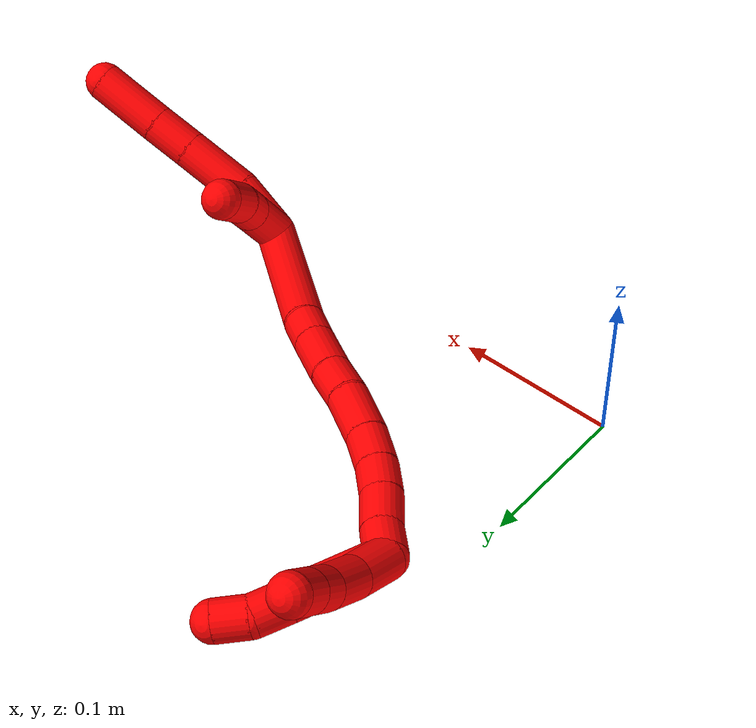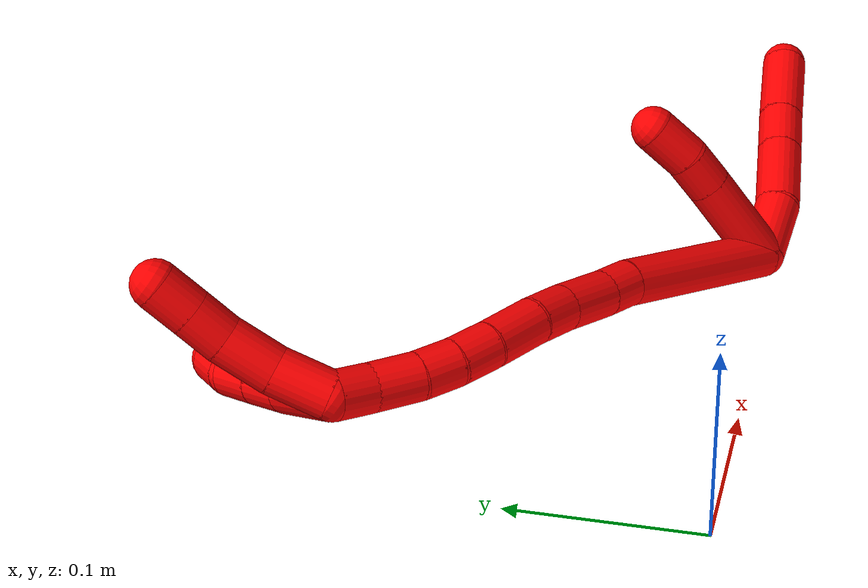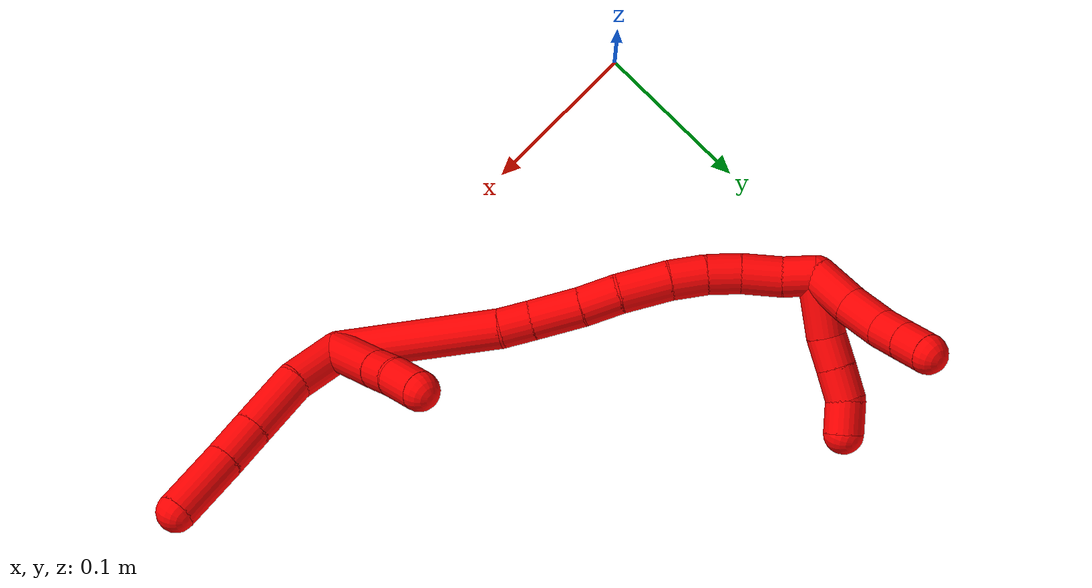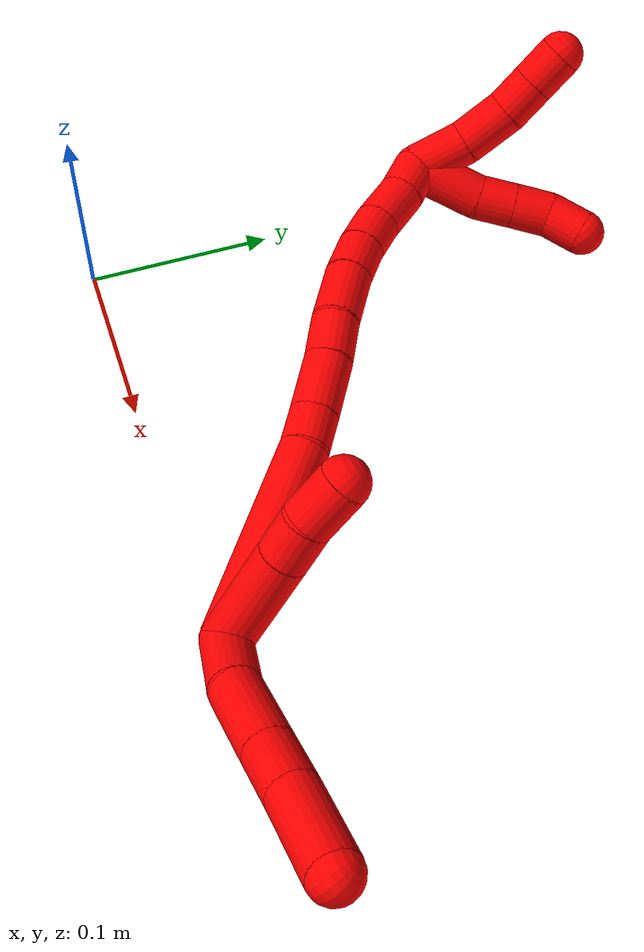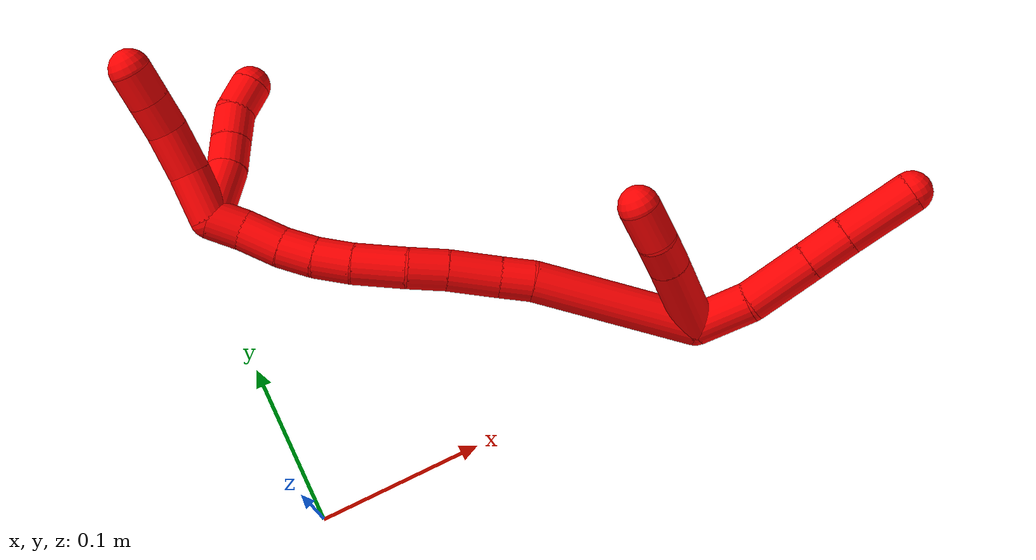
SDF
<sdf version="1.7">
 <world name="default">
  <model name="2">
   <static>0</static>
   <link name="2">
    <collision name="collision-cylinder-e_1_2_8">
     <pose>0.008455 -0.015945 0.001126 1.50032 0.486557 0.454587</pose>
     <geometry><cylinder><radius>0.0125</radius><length>0.036166</length></cylinder></geometry>
     <surface>
      <friction><ode><mu>1.16</mu><mu2>1.16</mu2><slip1>0</slip1><slip2>0</slip2></ode></friction>
      <contact><ode><kp>1e+06</kp><kd>1</kd><max_vel>0</max_vel><min_depth>0.001</min_depth></ode></contact>
     </surface>
    </collision>
    <visual name="visual-cylinder-e_1_2_8">
     <pose>0.008455 -0.015945 0.001126 1.50032 0.486557 0.454587</pose>
     <geometry><cylinder><radius>0.0125</radius><length>0.036166</length></cylinder></geometry>
     <material><ambient>1 0 0 1</ambient></material>
    </visual>
    <collision name="collision-cylinder-e_2_8_9">
     <pose>0.029414 -0.048225 0.00661 1.31004 0.63676 0.495936</pose>
     <geometry><cylinder><radius>0.0125</radius><length>0.042056</length></cylinder></geometry>
     <surface>
      <friction><ode><mu>1.16</mu><mu2>1.16</mu2><slip1>0</slip1><slip2>0</slip2></ode></friction>
      <contact><ode><kp>1e+06</kp><kd>1</kd><max_vel>0</max_vel><min_depth>0.001</min_depth></ode></contact>
     </surface>
    </collision>
    <visual name="visual-cylinder-e_2_8_9">
     <pose>0.029414 -0.048225 0.00661 1.31004 0.63676 0.495936</pose>
     <geometry><cylinder><radius>0.0125</radius><length>0.042056</length></cylinder></geometry>
     <material><ambient>1 0 0 1</ambient></material>
    </visual>
    <collision name="collision-cylinder-e_3_9_10">
     <pose>0.049985 -0.075011 0.01381 1.30538 0.640287 0.496457</pose>
     <geometry><cylinder><radius>0.0125</radius><length>0.027011</length></cylinder></geometry>
     <surface>
      <friction><ode><mu>1.16</mu><mu2>1.16</mu2><slip1>0</slip1><slip2>0</slip2></ode></friction>
      <contact><ode><kp>1e+06</kp><kd>1</kd><max_vel>0</max_vel><min_depth>0.001</min_depth></ode></contact>
     </surface>
    </collision>
    <visual name="visual-cylinder-e_3_9_10">
     <pose>0.049985 -0.075011 0.01381 1.30538 0.640287 0.496457</pose>
     <geometry><cylinder><radius>0.0125</radius><length>0.027011</length></cylinder></geometry>
     <material><ambient>1 0 0 1</ambient></material>
    </visual>
    <collision name="collision-cylinder-e_4_10_6">
     <pose>0.071349 -0.10296 0.020904 1.33237 0.635975 0.50637</pose>
     <geometry><cylinder><radius>0.0125</radius><length>0.044768</length></cylinder></geometry>
     <surface>
      <friction><ode><mu>1.16</mu><mu2>1.16</mu2><slip1>0</slip1><slip2>0</slip2></ode></friction>
      <contact><ode><kp>1e+06</kp><kd>1</kd><max_vel>0</max_vel><min_depth>0.001</min_depth></ode></contact>
     </surface>
    </collision>
    <visual name="visual-cylinder-e_4_10_6">
     <pose>0.071349 -0.10296 0.020904 1.33237 0.635975 0.50637</pose>
     <geometry><cylinder><radius>0.0125</radius><length>0.044768</length></cylinder></geometry>
     <material><ambient>1 0 0 1</ambient></material>
    </visual>
    <collision name="collision-cylinder-e_1_2_11">
     <pose>-0.006815 -0.006076 0.025493 0.233955 -0.254394 -0.030055</pose>
     <geometry><cylinder><radius>0.0125</radius><length>0.054158</length></cylinder></geometry>
     <surface>
      <friction><ode><mu>1.16</mu><mu2>1.16</mu2><slip1>0</slip1><slip2>0</slip2></ode></friction>
      <contact><ode><kp>1e+06</kp><kd>1</kd><max_vel>0</max_vel><min_depth>0.001</min_depth></ode></contact>
     </surface>
    </collision>
    <visual name="visual-cylinder-e_1_2_11">
     <pose>-0.006815 -0.006076 0.025493 0.233955 -0.254394 -0.030055</pose>
     <geometry><cylinder><radius>0.0125</radius><length>0.054158</length></cylinder></geometry>
     <material><ambient>1 0 0 1</ambient></material>
    </visual>
    <collision name="collision-cylinder-e_2_11_12">
     <pose>-0.016355 -0.014212 0.060857 0.20589 -0.263976 -0.027429</pose>
     <geometry><cylinder><radius>0.0125</radius><length>0.020889</length></cylinder></geometry>
     <surface>
      <friction><ode><mu>1.16</mu><mu2>1.16</mu2><slip1>0</slip1><slip2>0</slip2></ode></friction>
      <contact><ode><kp>1e+06</kp><kd>1</kd><max_vel>0</max_vel><min_depth>0.001</min_depth></ode></contact>
     </surface>
    </collision>
    <visual name="visual-cylinder-e_2_11_12">
     <pose>-0.016355 -0.014212 0.060857 0.20589 -0.263976 -0.027429</pose>
     <geometry><cylinder><radius>0.0125</radius><length>0.020889</length></cylinder></geometry>
     <material><ambient>1 0 0 1</ambient></material>
    </visual>
    <collision name="collision-cylinder-e_3_12_5">
     <pose>-0.020754 -0.017157 0.083059 0.071527 -0.134567 -0.004822</pose>
     <geometry><cylinder><radius>0.0125</radius><length>0.024953</length></cylinder></geometry>
     <surface>
      <friction><ode><mu>1.16</mu><mu2>1.16</mu2><slip1>0</slip1><slip2>0</slip2></ode></friction>
      <contact><ode><kp>1e+06</kp><kd>1</kd><max_vel>0</max_vel><min_depth>0.001</min_depth></ode></contact>
     </surface>
    </collision>
    <visual name="visual-cylinder-e_3_12_5">
     <pose>-0.020754 -0.017157 0.083059 0.071527 -0.134567 -0.004822</pose>
     <geometry><cylinder><radius>0.0125</radius><length>0.024953</length></cylinder></geometry>
     <material><ambient>1 0 0 1</ambient></material>
    </visual>
    <collision name="collision-cylinder-e_1_2_13">
     <pose>-0.02173 0.03153 0.033839 -0.750096 -0.439221 0.175298</pose>
     <geometry><cylinder><radius>0.0125</radius><length>0.102205</length></cylinder></geometry>
     <surface>
      <friction><ode><mu>1.16</mu><mu2>1.16</mu2><slip1>0</slip1><slip2>0</slip2></ode></friction>
      <contact><ode><kp>1e+06</kp><kd>1</kd><max_vel>0</max_vel><min_depth>0.001</min_depth></ode></contact>
     </surface>
    </collision>
    <visual name="visual-cylinder-e_1_2_13">
     <pose>-0.02173 0.03153 0.033839 -0.750096 -0.439221 0.175298</pose>
     <geometry><cylinder><radius>0.0125</radius><length>0.102205</length></cylinder></geometry>
     <material><ambient>1 0 0 1</ambient></material>
    </visual>
    <collision name="collision-cylinder-e_2_13_14">
     <pose>-0.048331 0.069978 0.073069 -0.908773 -0.506917 0.251722</pose>
     <geometry><cylinder><radius>0.0125</radius><length>0.020063</length></cylinder></geometry>
     <surface>
      <friction><ode><mu>1.16</mu><mu2>1.16</mu2><slip1>0</slip1><slip2>0</slip2></ode></friction>
      <contact><ode><kp>1e+06</kp><kd>1</kd><max_vel>0</max_vel><min_depth>0.001</min_depth></ode></contact>
     </surface>
    </collision>
    <visual name="visual-cylinder-e_2_13_14">
     <pose>-0.048331 0.069978 0.073069 -0.908773 -0.506917 0.251722</pose>
     <geometry><cylinder><radius>0.0125</radius><length>0.020063</length></cylinder></geometry>
     <material><ambient>1 0 0 1</ambient></material>
    </visual>
    <collision name="collision-cylinder-e_3_14_15">
     <pose>-0.061351 0.087058 0.087475 -0.845159 -0.540359 0.247798</pose>
     <geometry><cylinder><radius>0.0125</radius><length>0.031685</length></cylinder></geometry>
     <surface>
      <friction><ode><mu>1.16</mu><mu2>1.16</mu2><slip1>0</slip1><slip2>0</slip2></ode></friction>
      <contact><ode><kp>1e+06</kp><kd>1</kd><max_vel>0</max_vel><min_depth>0.001</min_depth></ode></contact>
     </surface>
    </collision>
    <visual name="visual-cylinder-e_3_14_15">
     <pose>-0.061351 0.087058 0.087475 -0.845159 -0.540359 0.247798</pose>
     <geometry><cylinder><radius>0.0125</radius><length>0.031685</length></cylinder></geometry>
     <material><ambient>1 0 0 1</ambient></material>
    </visual>
    <collision name="collision-cylinder-e_4_15_16">
     <pose>-0.076302 0.105076 0.102651 -0.905705 -0.597988 0.297741</pose>
     <geometry><cylinder><radius>0.0125</radius><length>0.02416</length></cylinder></geometry>
     <surface>
      <friction><ode><mu>1.16</mu><mu2>1.16</mu2><slip1>0</slip1><slip2>0</slip2></ode></friction>
      <contact><ode><kp>1e+06</kp><kd>1</kd><max_vel>0</max_vel><min_depth>0.001</min_depth></ode></contact>
     </surface>
    </collision>
    <visual name="visual-cylinder-e_4_15_16">
     <pose>-0.076302 0.105076 0.102651 -0.905705 -0.597988 0.297741</pose>
     <geometry><cylinder><radius>0.0125</radius><length>0.02416</length></cylinder></geometry>
     <material><ambient>1 0 0 1</ambient></material>
    </visual>
    <collision name="collision-cylinder-e_5_16_17">
     <pose>-0.090442 0.124784 0.116521 -0.994171 -0.478815 0.263316</pose>
     <geometry><cylinder><radius>0.0125</radius><length>0.03186</length></cylinder></geometry>
     <surface>
      <friction><ode><mu>1.16</mu><mu2>1.16</mu2><slip1>0</slip1><slip2>0</slip2></ode></friction>
      <contact><ode><kp>1e+06</kp><kd>1</kd><max_vel>0</max_vel><min_depth>0.001</min_depth></ode></contact>
     </surface>
    </collision>
    <visual name="visual-cylinder-e_5_16_17">
     <pose>-0.090442 0.124784 0.116521 -0.994171 -0.478815 0.263316</pose>
     <geometry><cylinder><radius>0.0125</radius><length>0.03186</length></cylinder></geometry>
     <material><ambient>1 0 0 1</ambient></material>
    </visual>
    <collision name="collision-cylinder-e_6_17_18">
     <pose>-0.10191 0.145349 0.13015 -0.973882 -0.373591 0.199473</pose>
     <geometry><cylinder><radius>0.0125</radius><length>0.022629</length></cylinder></geometry>
     <surface>
      <friction><ode><mu>1.16</mu><mu2>1.16</mu2><slip1>0</slip1><slip2>0</slip2></ode></friction>
      <contact><ode><kp>1e+06</kp><kd>1</kd><max_vel>0</max_vel><min_depth>0.001</min_depth></ode></contact>
     </surface>
    </collision>
    <visual name="visual-cylinder-e_6_17_18">
     <pose>-0.10191 0.145349 0.13015 -0.973882 -0.373591 0.199473</pose>
     <geometry><cylinder><radius>0.0125</radius><length>0.022629</length></cylinder></geometry>
     <material><ambient>1 0 0 1</ambient></material>
    </visual>
    <collision name="collision-cylinder-e_7_18_19">
     <pose>-0.10885 0.161932 0.142411 -0.892696 -0.271233 0.130418</pose>
     <geometry><cylinder><radius>0.0125</radius><length>0.020982</length></cylinder></geometry>
     <surface>
      <friction><ode><mu>1.16</mu><mu2>1.16</mu2><slip1>0</slip1><slip2>0</slip2></ode></friction>
      <contact><ode><kp>1e+06</kp><kd>1</kd><max_vel>0</max_vel><min_depth>0.001</min_depth></ode></contact>
     </surface>
    </collision>
    <visual name="visual-cylinder-e_7_18_19">
     <pose>-0.10885 0.161932 0.142411 -0.892696 -0.271233 0.130418</pose>
     <geometry><cylinder><radius>0.0125</radius><length>0.020982</length></cylinder></geometry>
     <material><ambient>1 0 0 1</ambient></material>
    </visual>
    <collision name="collision-cylinder-e_8_19_20">
     <pose>-0.114075 0.178725 0.157595 -0.789804 -0.189884 0.07934</pose>
     <geometry><cylinder><radius>0.0125</radius><length>0.025583</length></cylinder></geometry>
     <surface>
      <friction><ode><mu>1.16</mu><mu2>1.16</mu2><slip1>0</slip1><slip2>0</slip2></ode></friction>
      <contact><ode><kp>1e+06</kp><kd>1</kd><max_vel>0</max_vel><min_depth>0.001</min_depth></ode></contact>
     </surface>
    </collision>
    <visual name="visual-cylinder-e_8_19_20">
     <pose>-0.114075 0.178725 0.157595 -0.789804 -0.189884 0.07934</pose>
     <geometry><cylinder><radius>0.0125</radius><length>0.025583</length></cylinder></geometry>
     <material><ambient>1 0 0 1</ambient></material>
    </visual>
    <collision name="collision-cylinder-e_9_20_1">
     <pose>-0.119911 0.194357 0.173635 -0.7505 -0.334668 0.132879</pose>
     <geometry><cylinder><radius>0.0125</radius><length>0.020835</length></cylinder></geometry>
     <surface>
      <friction><ode><mu>1.16</mu><mu2>1.16</mu2><slip1>0</slip1><slip2>0</slip2></ode></friction>
      <contact><ode><kp>1e+06</kp><kd>1</kd><max_vel>0</max_vel><min_depth>0.001</min_depth></ode></contact>
     </surface>
    </collision>
    <visual name="visual-cylinder-e_9_20_1">
     <pose>-0.119911 0.194357 0.173635 -0.7505 -0.334668 0.132879</pose>
     <geometry><cylinder><radius>0.0125</radius><length>0.020835</length></cylinder></geometry>
     <material><ambient>1 0 0 1</ambient></material>
    </visual>
    <collision name="collision-cylinder-e_1_1_21">
     <pose>-0.106258 0.204725 0.188185 -0.461451 1.1225 -0.293251</pose>
     <geometry><cylinder><radius>0.0125</radius><length>0.037895</length></cylinder></geometry>
     <surface>
      <friction><ode><mu>1.16</mu><mu2>1.16</mu2><slip1>0</slip1><slip2>0</slip2></ode></friction>
      <contact><ode><kp>1e+06</kp><kd>1</kd><max_vel>0</max_vel><min_depth>0.001</min_depth></ode></contact>
     </surface>
    </collision>
    <visual name="visual-cylinder-e_1_1_21">
     <pose>-0.106258 0.204725 0.188185 -0.461451 1.1225 -0.293251</pose>
     <geometry><cylinder><radius>0.0125</radius><length>0.037895</length></cylinder></geometry>
     <material><ambient>1 0 0 1</ambient></material>
    </visual>
    <collision name="collision-cylinder-e_2_21_22">
     <pose>-0.081167 0.210217 0.201327 -0.307173 0.922441 -0.153565</pose>
     <geometry><cylinder><radius>0.0125</radius><length>0.020113</length></cylinder></geometry>
     <surface>
      <friction><ode><mu>1.16</mu><mu2>1.16</mu2><slip1>0</slip1><slip2>0</slip2></ode></friction>
      <contact><ode><kp>1e+06</kp><kd>1</kd><max_vel>0</max_vel><min_depth>0.001</min_depth></ode></contact>
     </surface>
    </collision>
    <visual name="visual-cylinder-e_2_21_22">
     <pose>-0.081167 0.210217 0.201327 -0.307173 0.922441 -0.153565</pose>
     <geometry><cylinder><radius>0.0125</radius><length>0.020113</length></cylinder></geometry>
     <material><ambient>1 0 0 1</ambient></material>
    </visual>
    <collision name="collision-cylinder-e_3_22_23">
     <pose>-0.06473 0.213815 0.213089 -0.286756 0.933959 -0.145317</pose>
     <geometry><cylinder><radius>0.0125</radius><length>0.020948</length></cylinder></geometry>
     <surface>
      <friction><ode><mu>1.16</mu><mu2>1.16</mu2><slip1>0</slip1><slip2>0</slip2></ode></friction>
      <contact><ode><kp>1e+06</kp><kd>1</kd><max_vel>0</max_vel><min_depth>0.001</min_depth></ode></contact>
     </surface>
    </collision>
    <visual name="visual-cylinder-e_3_22_23">
     <pose>-0.06473 0.213815 0.213089 -0.286756 0.933959 -0.145317</pose>
     <geometry><cylinder><radius>0.0125</radius><length>0.020948</length></cylinder></geometry>
     <material><ambient>1 0 0 1</ambient></material>
    </visual>
    <collision name="collision-cylinder-e_4_23_4">
     <pose>-0.0466 0.214605 0.222999 0.24219 1.17527 0.161771</pose>
     <geometry><cylinder><radius>0.0125</radius><length>0.021044</length></cylinder></geometry>
     <surface>
      <friction><ode><mu>1.16</mu><mu2>1.16</mu2><slip1>0</slip1><slip2>0</slip2></ode></friction>
      <contact><ode><kp>1e+06</kp><kd>1</kd><max_vel>0</max_vel><min_depth>0.001</min_depth></ode></contact>
     </surface>
    </collision>
    <visual name="visual-cylinder-e_4_23_4">
     <pose>-0.0466 0.214605 0.222999 0.24219 1.17527 0.161771</pose>
     <geometry><cylinder><radius>0.0125</radius><length>0.021044</length></cylinder></geometry>
     <material><ambient>1 0 0 1</ambient></material>
    </visual>
    <collision name="collision-cylinder-e_1_1_24">
     <pose>-0.120006 0.203243 0.195238 -0.149814 0.224497 -0.016919</pose>
     <geometry><cylinder><radius>0.0125</radius><length>0.029891</length></cylinder></geometry>
     <surface>
      <friction><ode><mu>1.16</mu><mu2>1.16</mu2><slip1>0</slip1><slip2>0</slip2></ode></friction>
      <contact><ode><kp>1e+06</kp><kd>1</kd><max_vel>0</max_vel><min_depth>0.001</min_depth></ode></contact>
     </surface>
    </collision>
    <visual name="visual-cylinder-e_1_1_24">
     <pose>-0.120006 0.203243 0.195238 -0.149814 0.224497 -0.016919</pose>
     <geometry><cylinder><radius>0.0125</radius><length>0.029891</length></cylinder></geometry>
     <material><ambient>1 0 0 1</ambient></material>
    </visual>
    <collision name="collision-cylinder-e_2_24_25">
     <pose>-0.115788 0.205676 0.223932 -0.018081 0.062241 -0.000563</pose>
     <geometry><cylinder><radius>0.0125</radius><length>0.028633</length></cylinder></geometry>
     <surface>
      <friction><ode><mu>1.16</mu><mu2>1.16</mu2><slip1>0</slip1><slip2>0</slip2></ode></friction>
      <contact><ode><kp>1e+06</kp><kd>1</kd><max_vel>0</max_vel><min_depth>0.001</min_depth></ode></contact>
     </surface>
    </collision>
    <visual name="visual-cylinder-e_2_24_25">
     <pose>-0.115788 0.205676 0.223932 -0.018081 0.062241 -0.000563</pose>
     <geometry><cylinder><radius>0.0125</radius><length>0.028633</length></cylinder></geometry>
     <material><ambient>1 0 0 1</ambient></material>
    </visual>
    <collision name="collision-cylinder-e_3_25_26">
     <pose>-0.115873 0.204976 0.248536 0.09256 -0.093856 -0.00435</pose>
     <geometry><cylinder><radius>0.0125</radius><length>0.020816</length></cylinder></geometry>
     <surface>
      <friction><ode><mu>1.16</mu><mu2>1.16</mu2><slip1>0</slip1><slip2>0</slip2></ode></friction>
      <contact><ode><kp>1e+06</kp><kd>1</kd><max_vel>0</max_vel><min_depth>0.001</min_depth></ode></contact>
     </surface>
    </collision>
    <visual name="visual-cylinder-e_3_25_26">
     <pose>-0.115873 0.204976 0.248536 0.09256 -0.093856 -0.00435</pose>
     <geometry><cylinder><radius>0.0125</radius><length>0.020816</length></cylinder></geometry>
     <material><ambient>1 0 0 1</ambient></material>
    </visual>
    <collision name="collision-cylinder-e_4_26_3">
     <pose>-0.117847 0.203122 0.269096 0.08736 -0.096783 -0.004233</pose>
     <geometry><cylinder><radius>0.0125</radius><length>0.02066</length></cylinder></geometry>
     <surface>
      <friction><ode><mu>1.16</mu><mu2>1.16</mu2><slip1>0</slip1><slip2>0</slip2></ode></friction>
      <contact><ode><kp>1e+06</kp><kd>1</kd><max_vel>0</max_vel><min_depth>0.001</min_depth></ode></contact>
     </surface>
    </collision>
    <visual name="visual-cylinder-e_4_26_3">
     <pose>-0.117847 0.203122 0.269096 0.08736 -0.096783 -0.004233</pose>
     <geometry><cylinder><radius>0.0125</radius><length>0.02066</length></cylinder></geometry>
     <material><ambient>1 0 0 1</ambient></material>
    </visual>
    <collision name="collision-sphere-3">
     <pose>-0.118845 0.202224 0.279339 0 -0 0</pose>
     <geometry><sphere><radius>0.0125</radius></sphere></geometry>
     <surface>
      <friction><ode><mu>1.16</mu><mu2>1.16</mu2><slip1>0</slip1><slip2>0</slip2></ode></friction>
      <contact><ode><kp>1e+06</kp><kd>1</kd><max_vel>0</max_vel><min_depth>0.001</min_depth></ode></contact>
     </surface>
    </collision>
    <visual name="visual-sphere-3">
     <pose>-0.118845 0.202224 0.279339 0 -0 0</pose>
     <geometry><sphere><radius>0.0125</radius></sphere></geometry>
     <material><ambient>1 0 0 1</ambient></material>
    </visual>
    <collision name="collision-sphere-26">
     <pose>-0.116849 0.204019 0.258854 0 -0 0</pose>
     <geometry><sphere><radius>0.0125</radius></sphere></geometry>
     <surface>
      <friction><ode><mu>1.16</mu><mu2>1.16</mu2><slip1>0</slip1><slip2>0</slip2></ode></friction>
      <contact><ode><kp>1e+06</kp><kd>1</kd><max_vel>0</max_vel><min_depth>0.001</min_depth></ode></contact>
     </surface>
    </collision>
    <visual name="visual-sphere-26">
     <pose>-0.116849 0.204019 0.258854 0 -0 0</pose>
     <geometry><sphere><radius>0.0125</radius></sphere></geometry>
     <material><ambient>1 0 0 1</ambient></material>
    </visual>
    <collision name="collision-sphere-25">
     <pose>-0.114898 0.205934 0.238218 0 -0 0</pose>
     <geometry><sphere><radius>0.0125</radius></sphere></geometry>
     <surface>
      <friction><ode><mu>1.16</mu><mu2>1.16</mu2><slip1>0</slip1><slip2>0</slip2></ode></friction>
      <contact><ode><kp>1e+06</kp><kd>1</kd><max_vel>0</max_vel><min_depth>0.001</min_depth></ode></contact>
     </surface>
    </collision>
    <visual name="visual-sphere-25">
     <pose>-0.114898 0.205934 0.238218 0 -0 0</pose>
     <geometry><sphere><radius>0.0125</radius></sphere></geometry>
     <material><ambient>1 0 0 1</ambient></material>
    </visual>
    <collision name="collision-sphere-24">
     <pose>-0.116679 0.205417 0.209646 0 -0 0</pose>
     <geometry><sphere><radius>0.0125</radius></sphere></geometry>
     <surface>
      <friction><ode><mu>1.16</mu><mu2>1.16</mu2><slip1>0</slip1><slip2>0</slip2></ode></friction>
      <contact><ode><kp>1e+06</kp><kd>1</kd><max_vel>0</max_vel><min_depth>0.001</min_depth></ode></contact>
     </surface>
    </collision>
    <visual name="visual-sphere-24">
     <pose>-0.116679 0.205417 0.209646 0 -0 0</pose>
     <geometry><sphere><radius>0.0125</radius></sphere></geometry>
     <material><ambient>1 0 0 1</ambient></material>
    </visual>
    <collision name="collision-sphere-4">
     <pose>-0.03689 0.213632 0.226935 0 -0 0</pose>
     <geometry><sphere><radius>0.0125</radius></sphere></geometry>
     <surface>
      <friction><ode><mu>1.16</mu><mu2>1.16</mu2><slip1>0</slip1><slip2>0</slip2></ode></friction>
      <contact><ode><kp>1e+06</kp><kd>1</kd><max_vel>0</max_vel><min_depth>0.001</min_depth></ode></contact>
     </surface>
    </collision>
    <visual name="visual-sphere-4">
     <pose>-0.03689 0.213632 0.226935 0 -0 0</pose>
     <geometry><sphere><radius>0.0125</radius></sphere></geometry>
     <material><ambient>1 0 0 1</ambient></material>
    </visual>
    <collision name="collision-sphere-23">
     <pose>-0.056309 0.215577 0.219063 0 -0 0</pose>
     <geometry><sphere><radius>0.0125</radius></sphere></geometry>
     <surface>
      <friction><ode><mu>1.16</mu><mu2>1.16</mu2><slip1>0</slip1><slip2>0</slip2></ode></friction>
      <contact><ode><kp>1e+06</kp><kd>1</kd><max_vel>0</max_vel><min_depth>0.001</min_depth></ode></contact>
     </surface>
    </collision>
    <visual name="visual-sphere-23">
     <pose>-0.056309 0.215577 0.219063 0 -0 0</pose>
     <geometry><sphere><radius>0.0125</radius></sphere></geometry>
     <material><ambient>1 0 0 1</ambient></material>
    </visual>
    <collision name="collision-sphere-22">
     <pose>-0.073151 0.212054 0.207115 0 -0 0</pose>
     <geometry><sphere><radius>0.0125</radius></sphere></geometry>
     <surface>
      <friction><ode><mu>1.16</mu><mu2>1.16</mu2><slip1>0</slip1><slip2>0</slip2></ode></friction>
      <contact><ode><kp>1e+06</kp><kd>1</kd><max_vel>0</max_vel><min_depth>0.001</min_depth></ode></contact>
     </surface>
    </collision>
    <visual name="visual-sphere-22">
     <pose>-0.073151 0.212054 0.207115 0 -0 0</pose>
     <geometry><sphere><radius>0.0125</radius></sphere></geometry>
     <material><ambient>1 0 0 1</ambient></material>
    </visual>
    <collision name="collision-sphere-21">
     <pose>-0.089183 0.208381 0.195538 0 -0 0</pose>
     <geometry><sphere><radius>0.0125</radius></sphere></geometry>
     <surface>
      <friction><ode><mu>1.16</mu><mu2>1.16</mu2><slip1>0</slip1><slip2>0</slip2></ode></friction>
      <contact><ode><kp>1e+06</kp><kd>1</kd><max_vel>0</max_vel><min_depth>0.001</min_depth></ode></contact>
     </surface>
    </collision>
    <visual name="visual-sphere-21">
     <pose>-0.089183 0.208381 0.195538 0 -0 0</pose>
     <geometry><sphere><radius>0.0125</radius></sphere></geometry>
     <material><ambient>1 0 0 1</ambient></material>
    </visual>
    <collision name="collision-sphere-1">
     <pose>-0.123333 0.201068 0.180831 0 -0 0</pose>
     <geometry><sphere><radius>0.0125</radius></sphere></geometry>
     <surface>
      <friction><ode><mu>1.16</mu><mu2>1.16</mu2><slip1>0</slip1><slip2>0</slip2></ode></friction>
      <contact><ode><kp>1e+06</kp><kd>1</kd><max_vel>0</max_vel><min_depth>0.001</min_depth></ode></contact>
     </surface>
    </collision>
    <visual name="visual-sphere-1">
     <pose>-0.123333 0.201068 0.180831 0 -0 0</pose>
     <geometry><sphere><radius>0.0125</radius></sphere></geometry>
     <material><ambient>1 0 0 1</ambient></material>
    </visual>
    <collision name="collision-sphere-11">
     <pose>-0.013629 -0.012151 0.050987 0 -0 0</pose>
     <geometry><sphere><radius>0.0125</radius></sphere></geometry>
     <surface>
      <friction><ode><mu>1.16</mu><mu2>1.16</mu2><slip1>0</slip1><slip2>0</slip2></ode></friction>
      <contact><ode><kp>1e+06</kp><kd>1</kd><max_vel>0</max_vel><min_depth>0.001</min_depth></ode></contact>
     </surface>
    </collision>
    <visual name="visual-sphere-11">
     <pose>-0.013629 -0.012151 0.050987 0 -0 0</pose>
     <geometry><sphere><radius>0.0125</radius></sphere></geometry>
     <material><ambient>1 0 0 1</ambient></material>
    </visual>
    <collision name="collision-sphere-6">
     <pose>0.084644 -0.120459 0.025157 0 -0 0</pose>
     <geometry><sphere><radius>0.0125</radius></sphere></geometry>
     <surface>
      <friction><ode><mu>1.16</mu><mu2>1.16</mu2><slip1>0</slip1><slip2>0</slip2></ode></friction>
      <contact><ode><kp>1e+06</kp><kd>1</kd><max_vel>0</max_vel><min_depth>0.001</min_depth></ode></contact>
     </surface>
    </collision>
    <visual name="visual-sphere-6">
     <pose>0.084644 -0.120459 0.025157 0 -0 0</pose>
     <geometry><sphere><radius>0.0125</radius></sphere></geometry>
     <material><ambient>1 0 0 1</ambient></material>
    </visual>
    <collision name="collision-sphere-10">
     <pose>0.058053 -0.085462 0.016651 0 -0 0</pose>
     <geometry><sphere><radius>0.0125</radius></sphere></geometry>
     <surface>
      <friction><ode><mu>1.16</mu><mu2>1.16</mu2><slip1>0</slip1><slip2>0</slip2></ode></friction>
      <contact><ode><kp>1e+06</kp><kd>1</kd><max_vel>0</max_vel><min_depth>0.001</min_depth></ode></contact>
     </surface>
    </collision>
    <visual name="visual-sphere-10">
     <pose>0.058053 -0.085462 0.016651 0 -0 0</pose>
     <geometry><sphere><radius>0.0125</radius></sphere></geometry>
     <material><ambient>1 0 0 1</ambient></material>
    </visual>
    <collision name="collision-sphere-9">
     <pose>0.041917 -0.06456 0.010969 0 -0 0</pose>
     <geometry><sphere><radius>0.0125</radius></sphere></geometry>
     <surface>
      <friction><ode><mu>1.16</mu><mu2>1.16</mu2><slip1>0</slip1><slip2>0</slip2></ode></friction>
      <contact><ode><kp>1e+06</kp><kd>1</kd><max_vel>0</max_vel><min_depth>0.001</min_depth></ode></contact>
     </surface>
    </collision>
    <visual name="visual-sphere-9">
     <pose>0.041917 -0.06456 0.010969 0 -0 0</pose>
     <geometry><sphere><radius>0.0125</radius></sphere></geometry>
     <material><ambient>1 0 0 1</ambient></material>
    </visual>
    <collision name="collision-sphere-2">
     <geometry><sphere><radius>0.0125</radius></sphere></geometry>
     <surface>
      <friction><ode><mu>1.16</mu><mu2>1.16</mu2><slip1>0</slip1><slip2>0</slip2></ode></friction>
      <contact><ode><kp>1e+06</kp><kd>1</kd><max_vel>0</max_vel><min_depth>0.001</min_depth></ode></contact>
     </surface>
    </collision>
    <visual name="visual-sphere-2">
     <geometry><sphere><radius>0.0125</radius></sphere></geometry>
     <material><ambient>1 0 0 1</ambient></material>
    </visual>
    <collision name="collision-sphere-19">
     <pose>-0.111661 0.169803 0.148752 0 -0 0</pose>
     <geometry><sphere><radius>0.0125</radius></sphere></geometry>
     <surface>
      <friction><ode><mu>1.16</mu><mu2>1.16</mu2><slip1>0</slip1><slip2>0</slip2></ode></friction>
      <contact><ode><kp>1e+06</kp><kd>1</kd><max_vel>0</max_vel><min_depth>0.001</min_depth></ode></contact>
     </surface>
    </collision>
    <visual name="visual-sphere-19">
     <pose>-0.111661 0.169803 0.148752 0 -0 0</pose>
     <geometry><sphere><radius>0.0125</radius></sphere></geometry>
     <material><ambient>1 0 0 1</ambient></material>
    </visual>
    <collision name="collision-sphere-8">
     <pose>0.016911 -0.031889 0.002251 0 -0 0</pose>
     <geometry><sphere><radius>0.0125</radius></sphere></geometry>
     <surface>
      <friction><ode><mu>1.16</mu><mu2>1.16</mu2><slip1>0</slip1><slip2>0</slip2></ode></friction>
      <contact><ode><kp>1e+06</kp><kd>1</kd><max_vel>0</max_vel><min_depth>0.001</min_depth></ode></contact>
     </surface>
    </collision>
    <visual name="visual-sphere-8">
     <pose>0.016911 -0.031889 0.002251 0 -0 0</pose>
     <geometry><sphere><radius>0.0125</radius></sphere></geometry>
     <material><ambient>1 0 0 1</ambient></material>
    </visual>
    <collision name="collision-sphere-12">
     <pose>-0.01908 -0.016274 0.070727 0 -0 0</pose>
     <geometry><sphere><radius>0.0125</radius></sphere></geometry>
     <surface>
      <friction><ode><mu>1.16</mu><mu2>1.16</mu2><slip1>0</slip1><slip2>0</slip2></ode></friction>
      <contact><ode><kp>1e+06</kp><kd>1</kd><max_vel>0</max_vel><min_depth>0.001</min_depth></ode></contact>
     </surface>
    </collision>
    <visual name="visual-sphere-12">
     <pose>-0.01908 -0.016274 0.070727 0 -0 0</pose>
     <geometry><sphere><radius>0.0125</radius></sphere></geometry>
     <material><ambient>1 0 0 1</ambient></material>
    </visual>
    <collision name="collision-sphere-5">
     <pose>-0.022427 -0.018041 0.095391 0 -0 0</pose>
     <geometry><sphere><radius>0.0125</radius></sphere></geometry>
     <surface>
      <friction><ode><mu>1.16</mu><mu2>1.16</mu2><slip1>0</slip1><slip2>0</slip2></ode></friction>
      <contact><ode><kp>1e+06</kp><kd>1</kd><max_vel>0</max_vel><min_depth>0.001</min_depth></ode></contact>
     </surface>
    </collision>
    <visual name="visual-sphere-5">
     <pose>-0.022427 -0.018041 0.095391 0 -0 0</pose>
     <geometry><sphere><radius>0.0125</radius></sphere></geometry>
     <material><ambient>1 0 0 1</ambient></material>
    </visual>
    <collision name="collision-sphere-13">
     <pose>-0.043461 0.063061 0.067678 0 -0 0</pose>
     <geometry><sphere><radius>0.0125</radius></sphere></geometry>
     <surface>
      <friction><ode><mu>1.16</mu><mu2>1.16</mu2><slip1>0</slip1><slip2>0</slip2></ode></friction>
      <contact><ode><kp>1e+06</kp><kd>1</kd><max_vel>0</max_vel><min_depth>0.001</min_depth></ode></contact>
     </surface>
    </collision>
    <visual name="visual-sphere-13">
     <pose>-0.043461 0.063061 0.067678 0 -0 0</pose>
     <geometry><sphere><radius>0.0125</radius></sphere></geometry>
     <material><ambient>1 0 0 1</ambient></material>
    </visual>
    <collision name="collision-sphere-14">
     <pose>-0.053201 0.076895 0.07846 0 -0 0</pose>
     <geometry><sphere><radius>0.0125</radius></sphere></geometry>
     <surface>
      <friction><ode><mu>1.16</mu><mu2>1.16</mu2><slip1>0</slip1><slip2>0</slip2></ode></friction>
      <contact><ode><kp>1e+06</kp><kd>1</kd><max_vel>0</max_vel><min_depth>0.001</min_depth></ode></contact>
     </surface>
    </collision>
    <visual name="visual-sphere-14">
     <pose>-0.053201 0.076895 0.07846 0 -0 0</pose>
     <geometry><sphere><radius>0.0125</radius></sphere></geometry>
     <material><ambient>1 0 0 1</ambient></material>
    </visual>
    <collision name="collision-sphere-15">
     <pose>-0.069501 0.09722 0.09649 0 -0 0</pose>
     <geometry><sphere><radius>0.0125</radius></sphere></geometry>
     <surface>
      <friction><ode><mu>1.16</mu><mu2>1.16</mu2><slip1>0</slip1><slip2>0</slip2></ode></friction>
      <contact><ode><kp>1e+06</kp><kd>1</kd><max_vel>0</max_vel><min_depth>0.001</min_depth></ode></contact>
     </surface>
    </collision>
    <visual name="visual-sphere-15">
     <pose>-0.069501 0.09722 0.09649 0 -0 0</pose>
     <geometry><sphere><radius>0.0125</radius></sphere></geometry>
     <material><ambient>1 0 0 1</ambient></material>
    </visual>
    <collision name="collision-sphere-16">
     <pose>-0.083102 0.112932 0.108813 0 -0 0</pose>
     <geometry><sphere><radius>0.0125</radius></sphere></geometry>
     <surface>
      <friction><ode><mu>1.16</mu><mu2>1.16</mu2><slip1>0</slip1><slip2>0</slip2></ode></friction>
      <contact><ode><kp>1e+06</kp><kd>1</kd><max_vel>0</max_vel><min_depth>0.001</min_depth></ode></contact>
     </surface>
    </collision>
    <visual name="visual-sphere-16">
     <pose>-0.083102 0.112932 0.108813 0 -0 0</pose>
     <geometry><sphere><radius>0.0125</radius></sphere></geometry>
     <material><ambient>1 0 0 1</ambient></material>
    </visual>
    <collision name="collision-sphere-17">
     <pose>-0.097781 0.136636 0.124229 0 -0 0</pose>
     <geometry><sphere><radius>0.0125</radius></sphere></geometry>
     <surface>
      <friction><ode><mu>1.16</mu><mu2>1.16</mu2><slip1>0</slip1><slip2>0</slip2></ode></friction>
      <contact><ode><kp>1e+06</kp><kd>1</kd><max_vel>0</max_vel><min_depth>0.001</min_depth></ode></contact>
     </surface>
    </collision>
    <visual name="visual-sphere-17">
     <pose>-0.097781 0.136636 0.124229 0 -0 0</pose>
     <geometry><sphere><radius>0.0125</radius></sphere></geometry>
     <material><ambient>1 0 0 1</ambient></material>
    </visual>
    <collision name="collision-sphere-18">
     <pose>-0.106039 0.154061 0.136071 0 -0 0</pose>
     <geometry><sphere><radius>0.0125</radius></sphere></geometry>
     <surface>
      <friction><ode><mu>1.16</mu><mu2>1.16</mu2><slip1>0</slip1><slip2>0</slip2></ode></friction>
      <contact><ode><kp>1e+06</kp><kd>1</kd><max_vel>0</max_vel><min_depth>0.001</min_depth></ode></contact>
     </surface>
    </collision>
    <visual name="visual-sphere-18">
     <pose>-0.106039 0.154061 0.136071 0 -0 0</pose>
     <geometry><sphere><radius>0.0125</radius></sphere></geometry>
     <material><ambient>1 0 0 1</ambient></material>
    </visual>
    <collision name="collision-sphere-20">
     <pose>-0.11649 0.187647 0.166438 0 -0 0</pose>
     <geometry><sphere><radius>0.0125</radius></sphere></geometry>
     <surface>
      <friction><ode><mu>1.16</mu><mu2>1.16</mu2><slip1>0</slip1><slip2>0</slip2></ode></friction>
      <contact><ode><kp>1e+06</kp><kd>1</kd><max_vel>0</max_vel><min_depth>0.001</min_depth></ode></contact>
     </surface>
    </collision>
    <visual name="visual-sphere-20">
     <pose>-0.11649 0.187647 0.166438 0 -0 0</pose>
     <geometry><sphere><radius>0.0125</radius></sphere></geometry>
     <material><ambient>1 0 0 1</ambient></material>
    </visual>
    <inertial>
     <pose>-0.046337 0.08043 0.102855 0 -0 0</pose>
     <mass>0.75</mass>
     <inertia>
      <ixx>0.000179</ixx>
      <ixy>0</ixy>
      <ixz>0</ixz>
      <iyy>0.000167</iyy>
      <iyz>0</iyz>
      <izz>1.4e-05</izz>
     </inertia>
    </inertial>
   </link>
   <pose>0.249866 0.007102 0.010784 -0.853219 0.507529 0.491614</pose>
  </model>
 </world>
</sdf>
